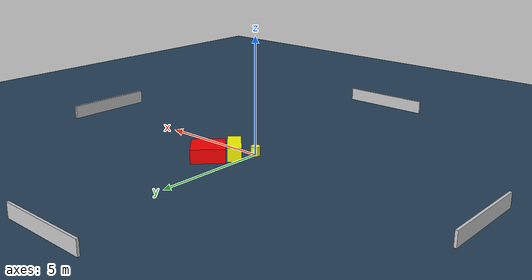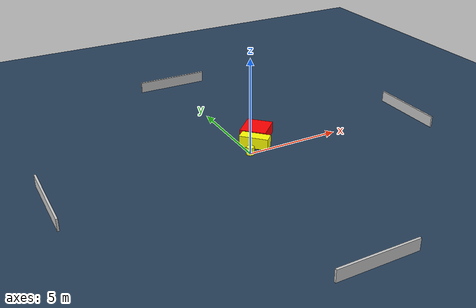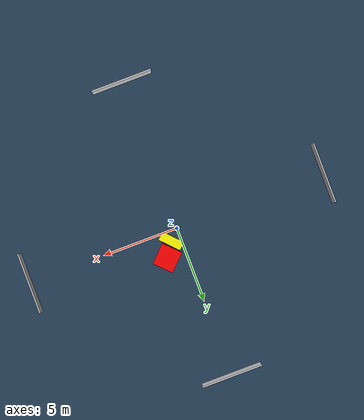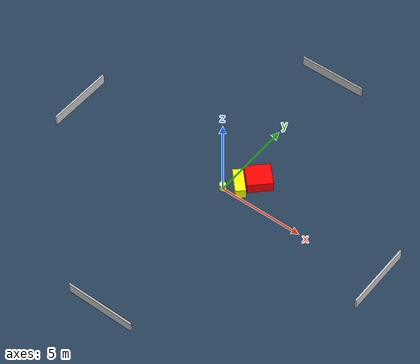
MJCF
<?xml version="1.0" ?>
<mujoco model="generated_environment">
  <option timestep="0.01" integrator="RK4" cone="elliptic"/>
  <default>
    <geom density="1"/>
  </default>
  <asset>
    <texture builtin="gradient" height="3072" name="skybox" rgb1="0.3 0.5 0.7" rgb2="0 0 0" type="skybox" width="512"/>
    <texture builtin="checker" height="300" name="groundplane" rgb1="0.2 0.3 0.4" rgb2="0.1 0.2 0.3" type="2d" width="300"/>
    <material name="groundplane" reflectance="0.2" texrepeat="5 5" texture="groundplane"/>
  </asset>
  <worldbody>
    <light dir="0 0 -1" directional="true" pos="0 0 1.5"/>
    <geom condim="3" friction="0.5 0.005 0.001" material="groundplane" name="floor" pos="0 0 0" size="0 0 0.05" type="plane"/>
    <body name="walls">
      <geom name="wall_1" condim="4" pos="-10.0 0.0 0.3" rgba="0.800000011920929 0.800000011920929 0.800000011920929 1.0" size="0.05 2.0 0.3" type="box"/>
      <geom name="wall_2" condim="4" pos="10.0 0.0 0.3" rgba="0.800000011920929 0.800000011920929 0.800000011920929 1.0" size="0.05 2.0 0.3" type="box"/>
      <geom name="wall_3" condim="4" pos="0.0 -10.0 0.3" rgba="0.800000011920929 0.800000011920929 0.800000011920929 1.0" size="2.0 0.05 0.3" type="box"/>
      <geom name="wall_4" condim="4" pos="0.0 10.0 0.3" rgba="0.800000011920929 0.800000011920929 0.800000011920929 1.0" size="2.0 0.05 0.3" type="box"/>
    </body>
    <body name="robot">
      <joint name="joint_x" type="slide" pos="0 0 0" axis="1 0 0"/>
      <joint name="joint_y" type="slide" pos="0 0 0" axis="0 1 0"/>
      <geom name="robot" type="cylinder" pos="0.0 0.0 0.2" size="0.2 0.2 0.0" mass="5.0" friction="1.0 0.005 0.0001" condim="4" rgba="1.0 1.0 0.0 1.0"/>
    </body>
    <body name="obstacle_1_movable">
      <geom name="obstacle_1_movable" condim="4" pos="0.6116300016827377 0.6308340538589267 0.3" euler="0 0 43.493372796510585" friction="0.0 0.005 0.001" rgba="1.0 1.0 0.0 1.0" size="0.29190204329072156 0.7568928976593465 0.3" type="box" mass="0.1"/>
      <joint type="free"/>
    </body>
    <body name="obstacle_2_static">
      <geom name="obstacle_2_static" condim="4" pos="1.2154991009426563 1.5595488088029004 0.3" euler="0 0 314.4278786259395" friction="0.0 0.005 0.001" rgba="1.0 0.0 0.0 1.0" size="0.686786127878179 0.7154901691521991 0.3" type="box"/>
    </body>
  </worldbody>
  <actuator>
    <motor name="actuator_x" joint="joint_x" gear="1" ctrlrange="-1 1"/>
    <motor name="actuator_y" joint="joint_y" gear="1" ctrlrange="-1 1"/>
  </actuator>
</mujoco>
